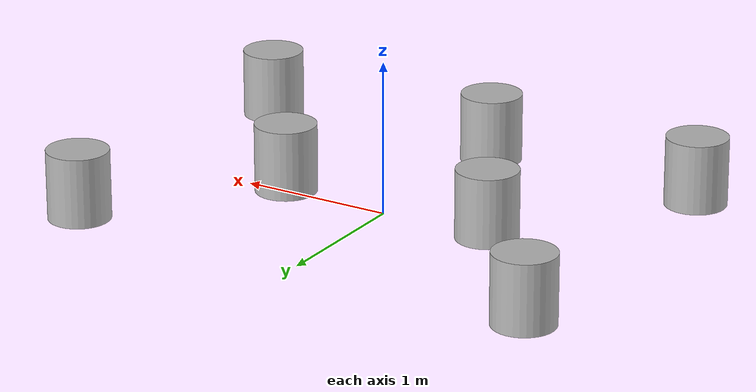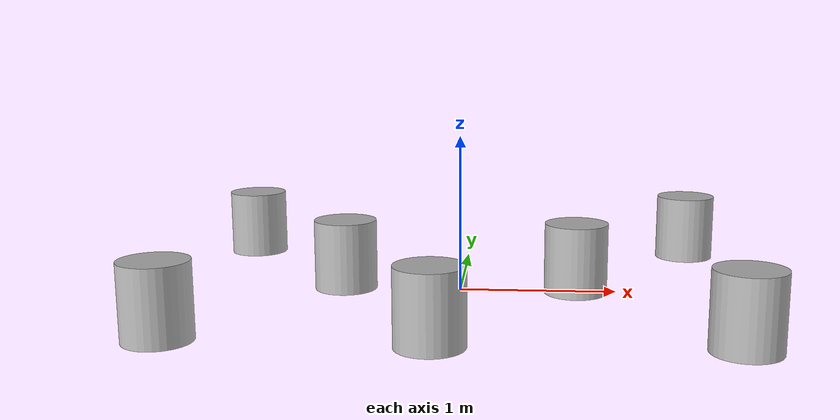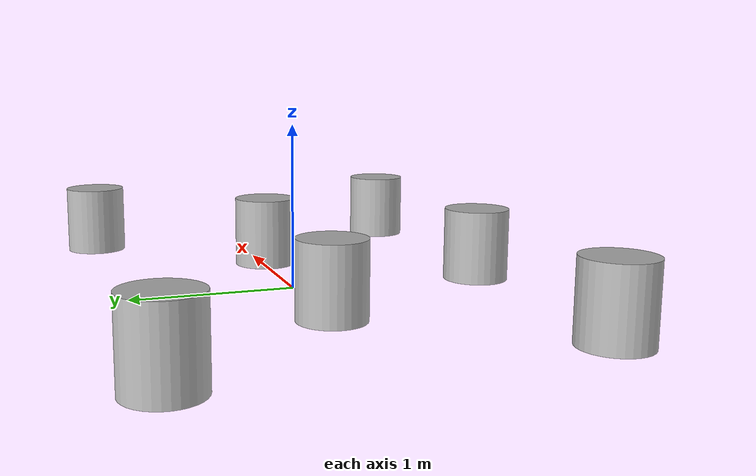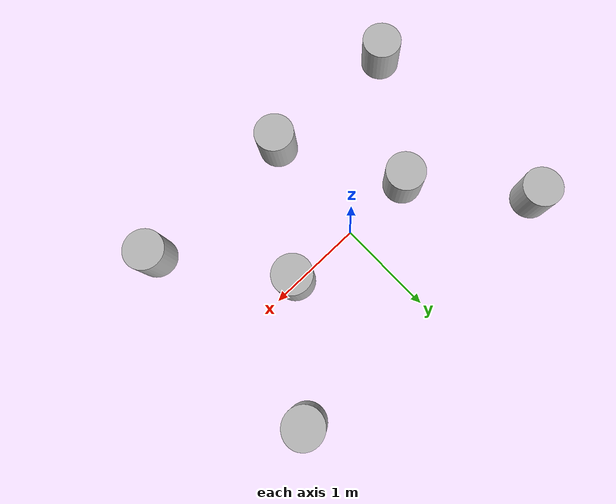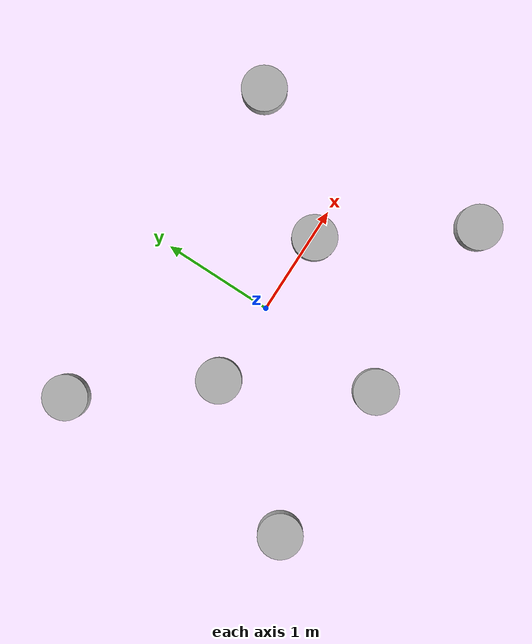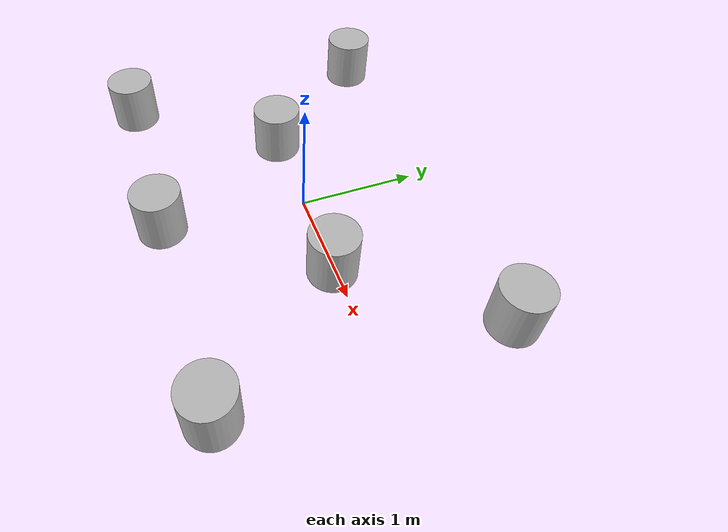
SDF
<?xml version="1.0"?>
<sdf version="1.5">
  <model name="CylindersBL">
    <static>true</static>
    <link name="main">
      <visual name="visual">
        <pose>0 0 0 0 0 0</pose>
		<geometry>
			<mesh>
				<uri>model://world/CylindersBL/CylindersBL.dae</uri>
			</mesh>
		</geometry>
      </visual>
      <collision name="collision">
        <pose>0 0 0 0 0 0</pose>
		<geometry>
			<mesh>
				<uri>model://world/CylindersBL/CylindersBL.dae</uri>
			</mesh>
		</geometry>
        <surface>
          <friction>
            <ode>
              <mu>0.1</mu>
              <mu2>0.1</mu2>
            </ode>
          </friction>
        </surface>
      </collision>
    </link>
  </model>
</sdf>
